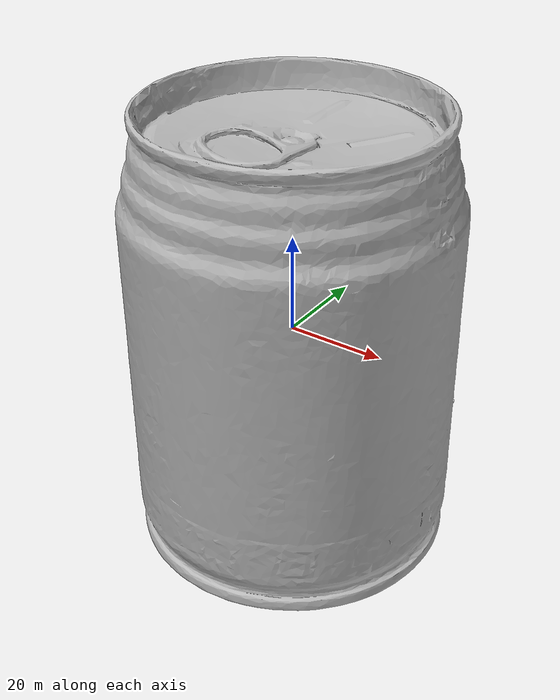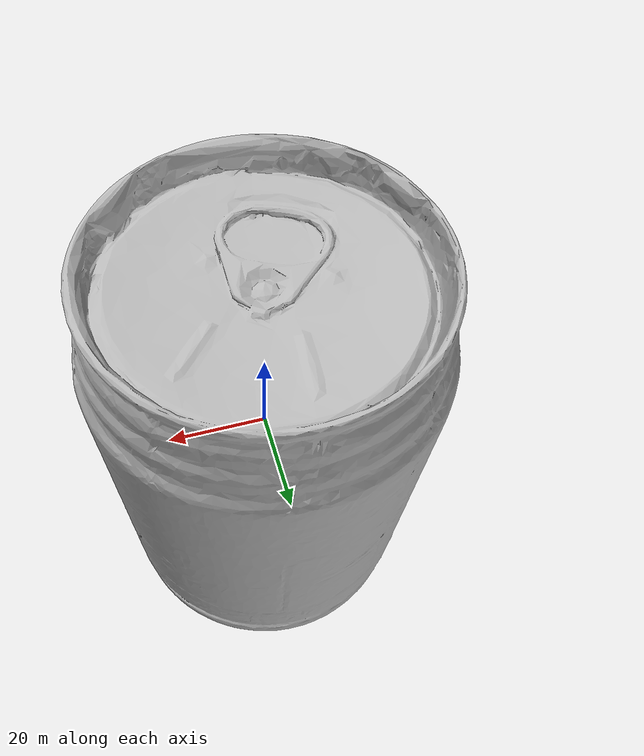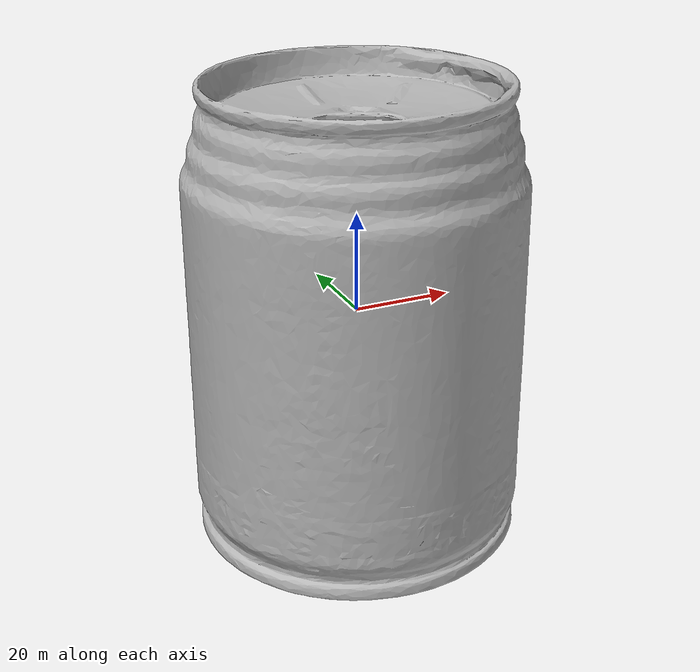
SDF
<sdf version="1.4">
 <world name="default">
  <light name="light1" type="point">
   <pose>0 0 1 0 0 0</pose>
   <diffuse>3 3 3 1</diffuse>
   <specular>3 3 3 1</specular>
  </light>
  <light name="light2" type="point">
   <pose>0 0.5 2 0 0 0</pose>
   <diffuse>1 1 1 1</diffuse>
   <specular>1 1 1 1</specular>
  </light>
  <light name="light3" type="point">
   <pose>0 0.5 2 0 0 0</pose>
   <diffuse>3 3 3 1</diffuse>
   <specular>3 3 3 1</specular>
  </light>
  <scene><ambient>0.7 0.7 0.7</ambient></scene>
  <model name="box2">
   <link name="link_box2">
    <collision name="default">
     <geometry>
      <mesh><uri>model://wooden_puzzle2/collision_meshes/collision.obj</uri><scale>1.0 1.0 1.0</scale></mesh>
     </geometry>
     <surface><friction><ode><mu>0.5</mu><mu2>0.5</mu2></ode></friction></surface>
    </collision>
    <visual name="default">
     <geometry>
      <mesh><uri>model://wooden_puzzle2/visual_meshes/visual.dae</uri><scale>1.0 1.0 1.0</scale></mesh>
     </geometry>
    </visual>
    <inertial>
     <mass>0.03464552015066147</mass>
     <pose>2.7402536943554878e-05 4.997663199901581e-05 6.587122334167361e-05 -0.1920274284601778 0.6112817660648215 -0.6338676817937987</pose>
     <inertia>
      <ixx>6.440233e-06</ixx>
      <iyy>6.6177017e-06</iyy>
      <izz>6.52356e-06</izz>
      <ixy>0</ixy>
      <ixz>0</ixz>
      <iyz>0</iyz>
     </inertia>
    </inertial>
   </link>
   <pose>0.09989476948976517 -0.3200235366821289 0.01691773533821106 0.020848646465341736 0.0007210787413259169 0.00023672143507415925</pose>
  </model>
  <model name="box3">
   <link name="link_box3">
    <collision name="default">
     <geometry>
      <mesh><uri>model://wooden_puzzle1/collision_meshes/collision.obj</uri><scale>1.0 1.0 1.0</scale></mesh>
     </geometry>
     <surface><friction><ode><mu>0.5</mu><mu2>0.5</mu2></ode></friction></surface>
    </collision>
    <visual name="default">
     <geometry>
      <mesh><uri>model://wooden_puzzle1/visual_meshes/visual.dae</uri><scale>1.0 1.0 1.0</scale></mesh>
     </geometry>
    </visual>
    <inertial>
     <mass>0.03424873203039169</mass>
     <pose>-0.0001735068071866408 7.97226166469045e-05 -9.191554272547364e-05 -0.07784599296854997 -0.2636133645981781 -0.5528677830585703</pose>
     <inertia>
      <ixx>6.4618e-06</ixx>
      <iyy>6.3374077e-06</iyy>
      <izz>6.413012e-06</izz>
      <ixy>0</ixy>
      <ixz>0</ixz>
      <iyz>0</iyz>
     </inertia>
    </inertial>
   </link>
   <pose>-0.0799933448433876 -0.2900063097476959 0.01686667464673519 0.006190143011110239 -0.009709492792081043 -0.00013498760435117735</pose>
  </model>
  <model name="can1">
   <link name="link_can1">
    <collision name="default">
     <geometry>
      <mesh><uri>model://pepsi/collision_meshes/collision.obj</uri><scale>1.0 1.0 1.0</scale></mesh>
     </geometry>
     <surface><friction><ode><mu>0.5</mu><mu2>0.5</mu2></ode></friction></surface>
    </collision>
    <visual name="default">
     <geometry><mesh><uri>model://pepsi/visual_meshes/visual.dae</uri><scale>1.0 1.0 1.0</scale></mesh></geometry>
    </visual>
    <inertial>
     <mass>0.3250696361064911</mass>
     <pose>-7.5590331107378e-05 2.99312814604491e-05 -0.0003384356386959553 -0.0010678660158137958 -0.0021735266966629516 0.5674177426725915</pose>
     <inertia>
      <ixx>0.0006476009</ixx>
      <iyy>0.0006471292</iyy>
      <izz>0.00013783273</izz>
      <ixy>0</ixy>
      <ixz>0</ixz>
      <iyz>0</iyz>
     </inertia>
    </inertial>
   </link>
   <pose>0.19001814723014832 0.3099517822265625 0.0744962990283966 -1.6531150858157026e-05 1.9174959259454084e-06 -4.668821204961823e-06</pose>
  </model>
  <model name="can2">
   <link name="link_can2">
    <collision name="default">
     <geometry>
      <mesh><uri>model://redbull/collision_meshes/collision.obj</uri><scale>1.0 1.0 1.0</scale></mesh>
     </geometry>
     <surface><friction><ode><mu>0.5</mu><mu2>0.5</mu2></ode></friction></surface>
    </collision>
    <visual name="default">
     <geometry>
      <mesh><uri>model://redbull/visual_meshes/visual.dae</uri><scale>1.0 1.0 1.0</scale></mesh>
     </geometry>
    </visual>
    <inertial>
     <mass>0.28235653042793274</mass>
     <pose>-2.2127058400656097e-05 -0.00012659600179176778 -0.0006860987632535398 0.0011377565977294822 -0.010800863454111471 0.5858141898730843</pose>
     <inertia>
      <ixx>0.0002654759</ixx>
      <iyy>0.0002657</iyy>
      <izz>0.00015754026</izz>
      <ixy>0</ixy>
      <ixz>0</ixz>
      <iyz>0</iyz>
     </inertia>
    </inertial>
   </link>
   <pose>0.10025212168693542 0.31062257289886475 0.04638563096523285 -0.010489199111436392 0.007260171832947498 -2.4910327353112177e-05</pose>
  </model>
 </world>
</sdf>
